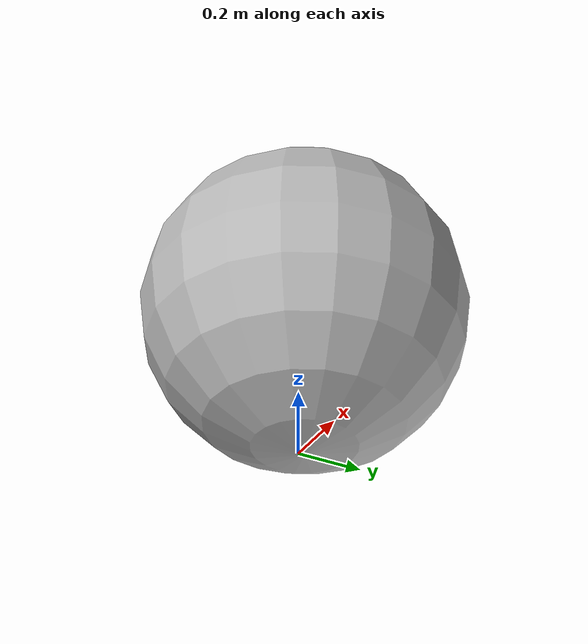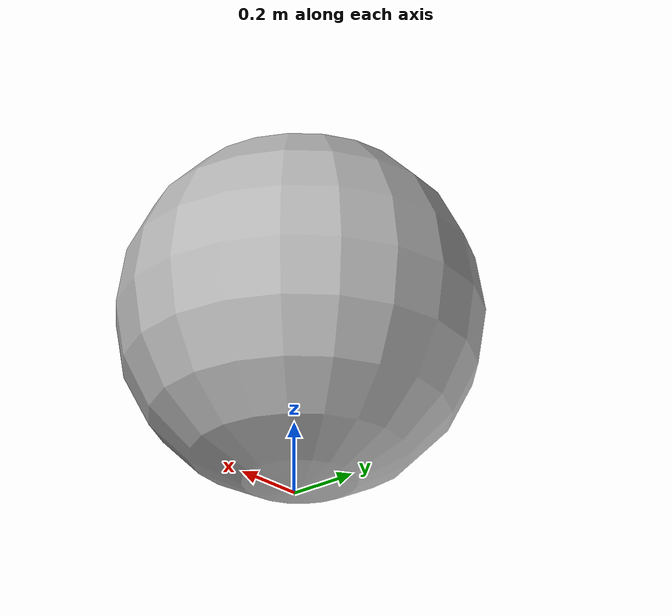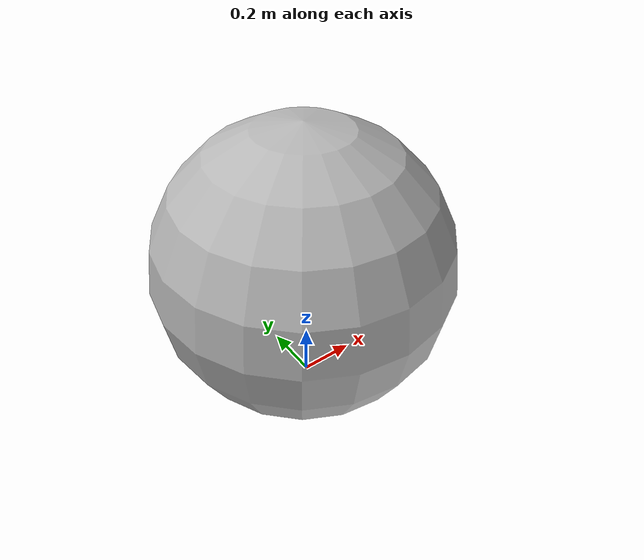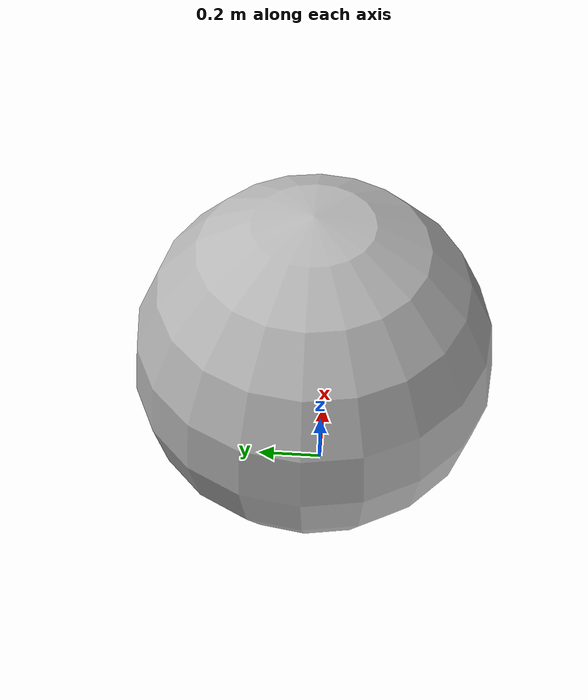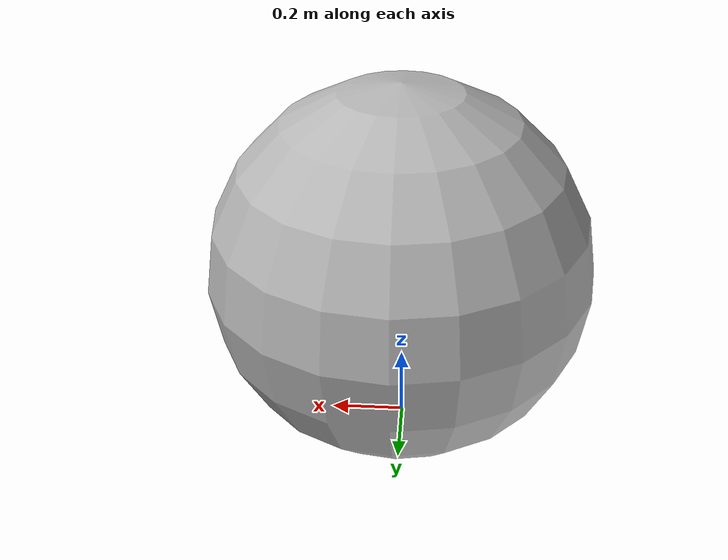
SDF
<?xml version="1.0"?>
<sdf version="1.7">
  <model name="sphere">
    <pose>0 0.02 0.5 0 0 0</pose>
    <link name="sphere">
      <inertial>
        <mass>1.</mass>
      </inertial>
      <visual name="sphere">
        <geometry>
          <sphere>
            <radius>0.5</radius>
          </sphere>
        </geometry>
        <material/>
      </visual>
      <collision name="sphere">
        <geometry>
          <sphere>
            <radius>0.5</radius>
          </sphere>
        </geometry>
      </collision>
    </link>
    <static>1</static>
  </model>
</sdf>
